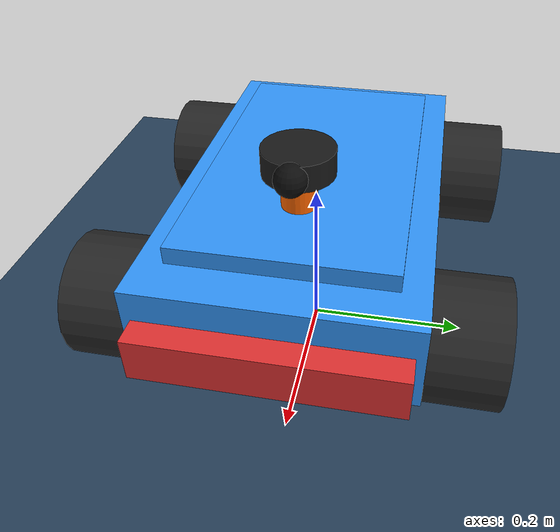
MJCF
<mujoco model="4wb_robot">

  <compiler angle="radian" autolimits="true"/>

  <option timestep="0.002" gravity="0 0 -9.81" integrator="RK4"/>

  <visual>
    <headlight diffuse="0.6 0.6 0.6" ambient="0.3 0.3 0.3" specular="0 0 0"/>
    <rgba haze="0.15 0.25 0.35 1"/>
  </visual>

  <asset>
    <texture type="skybox" builtin="gradient" rgb1="0.53 0.8 0.98" rgb2="0.1 0.2 0.4"
             width="512" height="512"/>
    <texture name="grid" type="2d" builtin="checker" rgb1="0.1 0.2 0.3" rgb2="0.2 0.3 0.4"
             width="512" height="512" mark="edge" markrgb="0.2 0.3 0.4"/>
    <material name="grid_mat" texture="grid" texrepeat="5 5" reflectance="0.2"/>
    <material name="body_mat"  rgba="0.2 0.6 1.0 1"/>
    <material name="wheel_mat" rgba="0.15 0.15 0.15 1"/>
    <material name="sensor_mat" rgba="1.0 0.4 0.0 1"/>
  </asset>

  <worldbody>

    <!-- Ground -->
    <geom name="ground" type="plane" size="20 20 0.1" material="grid_mat" condim="3"
          friction="1.0 0.005 0.0001"/>

    <!-- Lighting -->
    <light name="sun" pos="0 0 5" dir="0 0 -1" diffuse="0.8 0.8 0.8" specular="0.2 0.2 0.2"
           castshadow="true"/>

    <!-- ═══════════════ ROBOT BASE ═══════════════ -->
    <body name="chassis" pos="0 0 0.18">
      <freejoint name="root"/>

      <!-- Main chassis body -->
      <geom name="chassis_body" type="box" size="0.25 0.15 0.05"
            material="body_mat" mass="3.0" condim="3"/>

      <!-- Chassis top layer / deck -->
      <geom name="chassis_deck" type="box" size="0.20 0.12 0.01" pos="0 0 0.06"
            material="body_mat" mass="0.3"/>

      <!-- IMU site -->
      <site name="imu_site" pos="0 0 0" size="0.01"/>

      <!-- ─── Front bumper ─── -->
      <geom name="bumper_front" type="box" size="0.015 0.14 0.025" pos="0.265 0 -0.01"
            rgba="0.9 0.2 0.2 1" mass="0.1"/>

      <!-- ─── Rear bumper ─── -->
      <geom name="bumper_rear" type="box" size="0.015 0.14 0.025" pos="-0.265 0 -0.01"
            rgba="0.9 0.2 0.2 1" mass="0.1"/>

      <!-- ─── Sensor tower (camera / lidar placeholder) ─── -->
      <body name="sensor_tower" pos="0.10 0 0.07">
        <geom name="tower_pole" type="cylinder" size="0.02 0.04"
              material="sensor_mat" mass="0.15"/>
        <geom name="lidar_head" type="cylinder" size="0.04 0.015" pos="0 0 0.055"
              rgba="0.1 0.1 0.1 1" mass="0.1"/>
        <!-- Forward-facing camera stub -->
        <geom name="camera_lens" type="sphere" size="0.018" pos="0.04 0 0.055"
              rgba="0.05 0.05 0.05 1" mass="0.02"/>
        <camera name="front_cam" pos="0.05 0 0.06" xyaxes="0 -1 0 0 0 1"/>
      </body>

      <!-- ═══ WHEEL FL (Front-Left) ═══ -->
      <body name="wheel_fl" pos="0.17 0.19 -0.03">
        <joint name="j_fl" type="hinge" axis="0 1 0" limited="false"/>
        <geom name="geom_fl" type="cylinder" size="0.07 0.04"
              material="wheel_mat" mass="0.4" friction="1.5 0.005 0.0001"
              euler="1.5708 0 0"/>
        <!-- Wheel hub cap -->
        <geom name="hub_fl" type="cylinder" size="0.025 0.042"
              rgba="0.8 0.8 0.8 1" mass="0.05" euler="1.5708 0 0"/>
      </body>

      <!-- ═══ WHEEL FR (Front-Right) ═══ -->
      <body name="wheel_fr" pos="0.17 -0.19 -0.03">
        <joint name="j_fr" type="hinge" axis="0 1 0" limited="false"/>
        <geom name="geom_fr" type="cylinder" size="0.07 0.04"
              material="wheel_mat" mass="0.4" friction="1.5 0.005 0.0001"
              euler="1.5708 0 0"/>
        <geom name="hub_fr" type="cylinder" size="0.025 0.042"
              rgba="0.8 0.8 0.8 1" mass="0.05" euler="1.5708 0 0"/>
      </body>

      <!-- ═══ WHEEL RL (Rear-Left) ═══ -->
      <body name="wheel_rl" pos="-0.17 0.19 -0.03">
        <joint name="j_rl" type="hinge" axis="0 1 0" limited="false"/>
        <geom name="geom_rl" type="cylinder" size="0.07 0.04"
              material="wheel_mat" mass="0.4" friction="1.5 0.005 0.0001"
              euler="1.5708 0 0"/>
        <geom name="hub_rl" type="cylinder" size="0.025 0.042"
              rgba="0.8 0.8 0.8 1" mass="0.05" euler="1.5708 0 0"/>
      </body>

      <!-- ═══ WHEEL RR (Rear-Right) ═══ -->
      <body name="wheel_rr" pos="-0.17 -0.19 -0.03">
        <joint name="j_rr" type="hinge" axis="0 1 0" limited="false"/>
        <geom name="geom_rr" type="cylinder" size="0.07 0.04"
              material="wheel_mat" mass="0.4" friction="1.5 0.005 0.0001"
              euler="1.5708 0 0"/>
        <geom name="hub_rr" type="cylinder" size="0.025 0.042"
              rgba="0.8 0.8 0.8 1" mass="0.05" euler="1.5708 0 0"/>
      </body>

    </body>
    <!-- ═══════════════ END ROBOT ═══════════════ -->

  </worldbody>

  <!-- ═══════════════ ACTUATORS ═══════════════ -->
  <actuator>
    <!-- Velocity-controlled motors on all four wheels (differential / skid-steer capable) -->
    <velocity name="motor_fl" joint="j_fl" kv="5" gear="1" ctrlrange="-15 15" forcelimited="true" forcerange="-20 20"/>
    <velocity name="motor_fr" joint="j_fr" kv="5" gear="1" ctrlrange="-15 15" forcelimited="true" forcerange="-20 20"/>
    <velocity name="motor_rl" joint="j_rl" kv="5" gear="1" ctrlrange="-15 15" forcelimited="true" forcerange="-20 20"/>
    <velocity name="motor_rr" joint="j_rr" kv="5" gear="1" ctrlrange="-15 15" forcelimited="true" forcerange="-20 20"/>
  </actuator>

  <!-- ═══════════════ SENSORS ═══════════════ -->
  <sensor>
    <!-- IMU-style sensors on chassis -->
    <gyro    name="imu_gyro"    site="imu_site"/>
    <accelerometer name="imu_accel" site="imu_site"/>
    <!-- Wheel velocity feedback -->
    <jointvel name="vel_fl" joint="j_fl"/>
    <jointvel name="vel_fr" joint="j_fr"/>
    <jointvel name="vel_rl" joint="j_rl"/>
    <jointvel name="vel_rr" joint="j_rr"/>
  </sensor>

  <!-- IMU site attached to chassis (must be inside worldbody via site referencing) -->
  <contact>
    <!-- Ensure wheel–ground contacts are handled per wheel -->
  </contact>

</mujoco>
